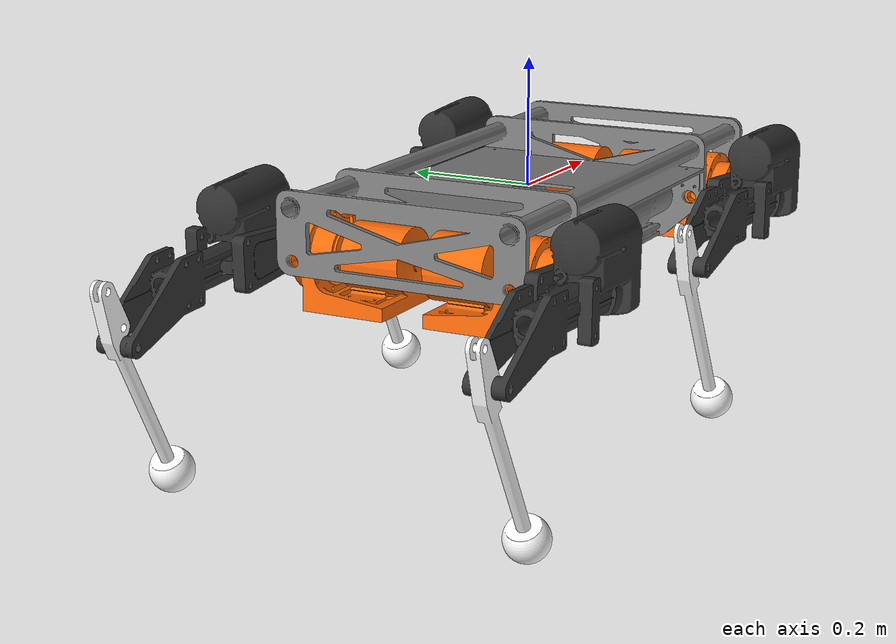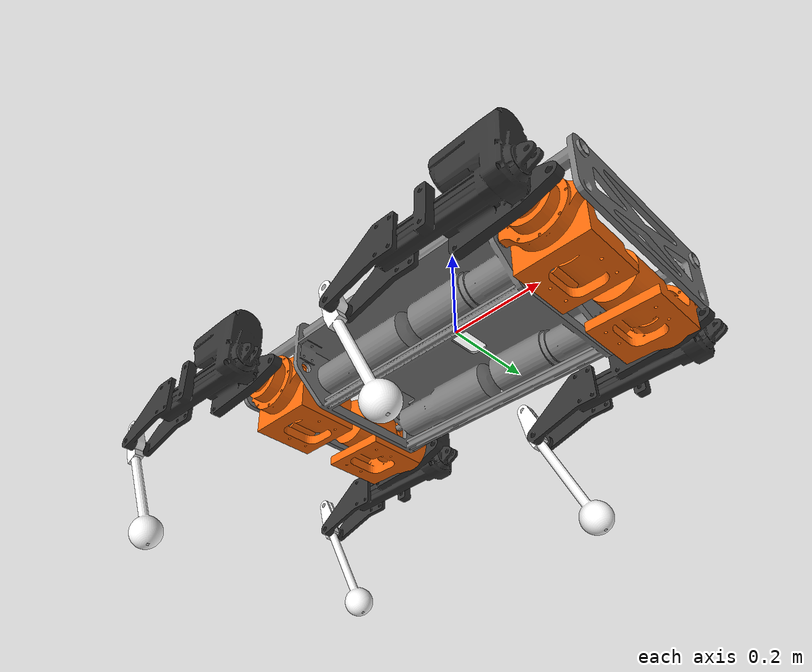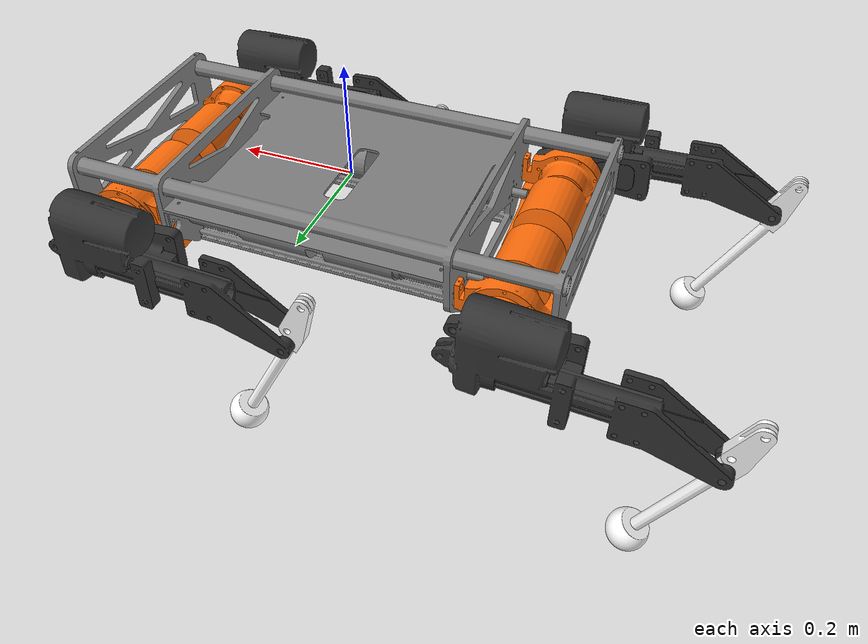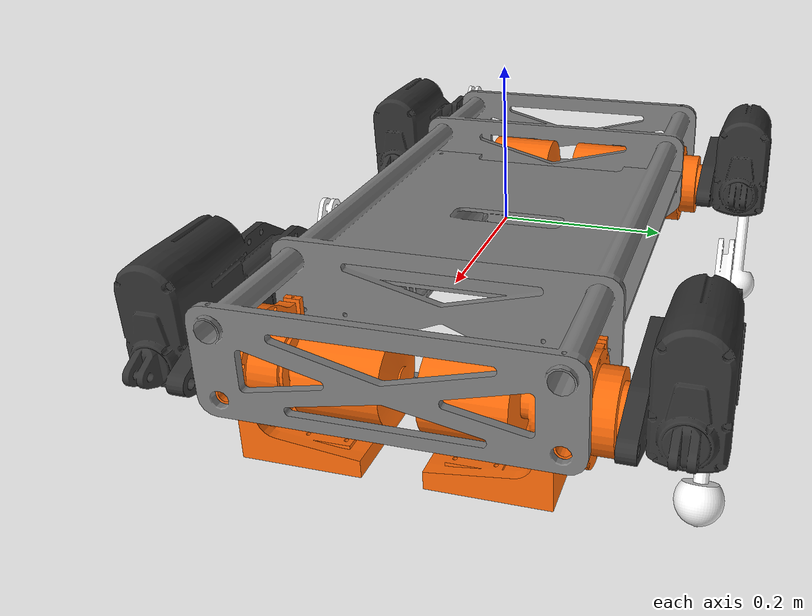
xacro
<?xml version="1.0" encoding="utf-8"?>
<robot name="popi" xmlns:xacro="http://www.ros.org/wiki/xacro">

<!-- Import Rviz colors -->
 	<xacro:include filename="$(find popi_description)/xacro/physicprop.xacro" />

<!--*************************************** CORPS ****************************************-->

	<link name="Base_flottante">
        <visual>
            <origin rpy="0 0 0" xyz="0 0 0"/>
            <geometry>
                <box size="0.001 0.001 0.001"/>
            </geometry>
        </visual>
    </link>

    <joint name="base_flottante" type="fixed">
        <origin rpy="0 0 0" xyz="0 0 0"/>
        <parent link="Base_flottante"/>
        <child link="Bati"/>
    </joint>

  	<link name="Bati">
	    <inertial>
		    <origin xyz="0 0 -0.03523"
		        	rpy="0 0 0" />
		    <mass value="${masse_bati}" />
		    <inertia 	ixx="0.38573"  ixy="0"   		ixz="0"
										iyy="0.90692" 	iyz="0"
		        										izz="1.2277" />
	    </inertial>
	    <visual>
		    <origin xyz="0 0 0"
		        	rpy="0 0 0" />
		    <geometry>
		    	<mesh filename="package://popi_description/meshes/Bati.STL" />
		    </geometry>
		    <material name="grey"/>
	    </visual>
	    <collision>
	      	<origin xyz="0 0 0"
	        	  	rpy="0 0 0" />
	      	<geometry>
	        	<mesh filename="package://popi_description/meshes/Bati.STL" />
	      	</geometry>
	    </collision>
  	</link>

<!--********************************* JAMBE AVANT-DROITE *********************************-->

  	<link name="EpauleAVD">
	    <inertial>
	      	<origin xyz="-0.00137 0.04355 -0.00354"
	        		rpy="0 0 0" />
	     	<mass value="${masse_epaule}" />
	      	<inertia  	ixx="0.0286" 	ixy="6E-05" 	ixz="-0.00018"
	        							iyy="0.01067" 	iyz="-0.00075"
	        											izz="0.02893" />
	    </inertial>
    	<visual>
      		<origin xyz="0 0 0"
        			rpy="0 0 0" />
	      	<geometry>
	        	<mesh filename="package://popi_description/meshes/EpauleAVD.STL" />
	      	</geometry>
	      	<material name="orange"/>
    	</visual>
    	<collision>
      		<origin xyz="0 0 0"
        			rpy="0 0 0" />
      		<geometry>
        		<mesh filename="package://popi_description/meshes/EpauleAVD.STL" />
      		</geometry>
    	</collision>
  	</link>

  	<link name="HJambeAVD">
    	<inertial>
     		<origin xyz="-0.11331 0.00512 0.01743"
        			rpy="0 0 0" />
      		<mass value="${masse_hjambe}" />
      		<inertia 	ixx="0.00899" 	ixy="0.00215" 	ixz="0.00647"
        								iyy="0.0605"    iyz="-0.00043"
        												izz="0.05703" />
    	</inertial>
    	<visual>
      		<origin xyz="0 0 0"
        			rpy="0 0 0" />
      		<geometry>
        		<mesh filename="package://popi_description/meshes/HJambeAVD.STL" />
      		</geometry>
      		<material name="darkgrey"/>
    	</visual>
    	<collision>
      		<origin xyz="0 0 0"
        			rpy="0 0 0" />
      		<geometry>
        		<mesh filename="package://popi_description/meshes/HJambeAVD.STL" />
      		</geometry>
    	</collision>
  	</link>

  	<link name="BJambeAVD">
    	<inertial>
      		<origin xyz="0.11761 0 -0.012387"
        			rpy="0 0 0" />
      		<mass value="${masse_bjambe}" />
      		<inertia 	ixx="0.000103" 	ixy="0.000000" 	ixz="-0.00019"
      									iyy="0.006798" 	iyz="0"
        												izz="0.006776" />
    	</inertial>
    	<visual>
      		<origin xyz="0 0 0"
        			rpy="0 0 0" />
      		<geometry>
        		<mesh filename="package://popi_description/meshes/BJambeAVD.STL" />
      		</geometry>
      		<material name="white"/>
    	</visual>
    	<collision>
      		<origin xyz="0 0 0"
        			rpy="0 0 0" />
      		<geometry>
        		<mesh filename="package://popi_description/meshes/BJambeAVD.STL" />
      		</geometry>
    	</collision>
  	</link>

  	<link name="PiedAVD">
    	<inertial>
      		<origin xyz="0.0005 1.1348E-09 -1.2018E-09"
        			rpy="0 0 0" />
      		<mass value="${masse_pied}" />
      		<inertia 	ixx="1.0417E-10"	ixy="3.2086E-25"	ixz="2.1003E-26"
        									iyy="5.4167E-11"	iyz="6.3205E-25"
        														izz="5.4167E-11" />
    	</inertial>
    	<visual>
      		<origin xyz="0 0 0"
        	    	rpy="0 0 0" />
      		<geometry>
        		<mesh filename="package://popi_description/meshes/PiedAVD.STL" />
      		</geometry>
      		<material name="white"/>
    	</visual>
    	<collision>
      		<origin xyz="0 0 0"
        	  		rpy="0 0 0" />
      		<geometry>
        		<mesh filename="package://popi_description/meshes/PiedAVD.STL" />
      		</geometry>
    	</collision>
  	</link>

<!--********************************* JAMBE AVANT-GAUCHE *********************************-->

    <link name="EpauleAVG">
    	<inertial>
      		<origin xyz="-0.00137 -0.04355 -0.00354"
        			rpy="0 0 0" />
      		<mass value="${masse_epaule}" />
      		<inertia 	ixx="0.02864" 	ixy="-6E-05"	ixz="-0.00018"
        								iyy="0.01067"	iyz="0.00075"
        												izz="0.02893" />
    	</inertial>
    	<visual>
      		<origin xyz="0 0 0"
        			rpy="0 0 0" />
     		 <geometry>
       			<mesh filename="package://popi_description/meshes/EpauleAVG.STL" />
      		</geometry>
      		<material name="orange"/>
    	</visual>
    	<collision>
      		<origin xyz="0 0 0"
        			rpy="0 0 0" />
      		<geometry>
        		<mesh filename="package://popi_description/meshes/EpauleAVG.STL" />
      		</geometry>
    	</collision>
  	</link>

	<link name="HJambeAVG">
	    <inertial>
	      	<origin xyz="-0.11389 -0.00555 0.00901"
	        		rpy="0 0 0" />
	      	<mass value="${masse_hjambe}" />
	      	<inertia 	ixx="0.01032" 	ixy="-0.00226" 	ixz="0.01011"
	        							iyy="0.06056" 	iyz="0.00025"
	        											izz="0.05596" />
	    </inertial>
	    <visual>
	     	<origin xyz="0 0 0"
	        		rpy="0 0 0" />
	      	<geometry>
	        	<mesh filename="package://popi_description/meshes/HJambeAVG.STL" />
	      	</geometry>
	      	<material name="darkgrey"/>
	    </visual>
	    <collision>
	      	<origin xyz="0 0 0"
	        		rpy="0 0 0" />
	      		<geometry>
	        		<mesh filename="package://popi_description/meshes/HJambeAVG.STL" />
	      		</geometry>
	    </collision>
	</link>

	<link name="BJambeAVG">
	    <inertial>
	      	<origin xyz="0.11761 0 -0.012387"
	        		rpy="0 0 0" />
	      	<mass value="${masse_bjambe}" />
	      	<inertia 	ixx="0.000103" 	ixy="0.000000" 	ixz="-0.00019"
      									iyy="0.006798" 	iyz="0"
        												izz="0.006776" />
	    </inertial>
	    <visual>
	      	<origin xyz="0 0 0"
        		  	rpy="0 0 0" />
	      	<geometry>
	        	<mesh filename="package://popi_description/meshes/BJambeAVG.STL" />
	      	</geometry>
	      	<material name="white"/>
	    </visual>
	    <collision>
	      	<origin xyz="0 0 0"
        		  	rpy="0 0 0" />
	      	<geometry>
	        	<mesh filename="package://popi_description/meshes/BJambeAVG.STL" />
	      	</geometry>
	    </collision>
	</link>

	<link name="PiedAVG">
    	<inertial>
      		<origin xyz="0.0005 -3.5068E-06 -4.4931E-09"
        	  		rpy="0 0 0" />
      		<mass value="${masse_pied}" />
      		<inertia 		ixx="1.0417E-10" 	ixy="4.4849E-25" 	ixz="1.454E-25"
        										iyy="5.4167E-11" 	iyz="6.3205E-25"
        															izz="5.4167E-11" />
    	</inertial>
	    <visual>
	    	<origin xyz="0 0 0"
	        	  	rpy="0 0 0" />
	    	<geometry>
	        	<mesh filename="package://popi_description/meshes/PiedAVG.STL" />
	      	</geometry>
	      	<material name="white"/>
	    </visual>
	    <collision>
	      	<origin xyz="0 0 0"
	        	  	rpy="0 0 0" />
	      	<geometry>
	        	<mesh filename="package://popi_description/meshes/PiedAVG.STL" />
	      	</geometry>
    	</collision>
  	</link>

<!--******************************** JAMBE ARRIERE-DROITE ********************************-->
	<link name="EpauleARD">
	    <inertial>
	      	<origin xyz="0.00137 0.04355 -0.00354"
	        		rpy="0 0 0" />
	      	<mass value="${masse_epaule}" />
	     	<inertia 	ixx="0.02864" 	ixy="-6E-05" 	ixz="1.8E-05"
	        							iyy="0.01067"	iyz="-0.00075"
	        											izz="0.02893" />
	    </inertial>
	    <visual>
	      	<origin xyz="0 0 0"
	        		rpy="0 0 0" />
	        <geometry>
	        	<mesh filename="package://popi_description/meshes/EpauleARD.STL" />
	      	</geometry>
	      	<material name="orange"/>
	    </visual>
	    <collision>
	      	<origin xyz="0 0 0"
	        		rpy="0 0 0" />
	        <geometry>
	        	<mesh filename="package://popi_description/meshes/EpauleARD.STL" />
	      	</geometry>
	    </collision>
	</link>

	<link name="HJambeARD">
	    <inertial>
	     	<origin xyz="-0.11331 0.00512 0.01743"
	        		rpy="0 0 0" />
	      	<mass value="${masse_hjambe}" />
	      	<inertia 	ixx="0.00899" 	ixy="0.00215" 	ixz="0.00647"
	        							iyy="0.0605"  	iyz="-0.00043"
	        											izz="0.05703" />
	    </inertial>
	    <visual>
	      	<origin xyz="0 0 0"
	        		rpy="0 0 0" />
	      	<geometry>
	        	<mesh filename="package://popi_description/meshes/HJambeARD.STL" />
	      	</geometry>
	      	<material name="darkgrey"/>
	    </visual>
	    <collision>
	      	<origin xyz="0 0 0"
	        		rpy="0 0 0" />
	      	<geometry>
	        	<mesh filename="package://popi_description/meshes/HJambeARD.STL" />
	      	</geometry>
	    </collision>
	</link>

  	<link name="BJambeARD">
	    <inertial>
	      	<origin xyz="0.11761 0 -0.012387"
	        		rpy="0 0 0" />
	      	<mass value="${masse_bjambe}" />
	      	<inertia 	ixx="0.000103" 	ixy="0.000000" 	ixz="-0.00019"
      									iyy="0.006798" 	iyz="0"
        												izz="0.006776" />
	    </inertial>
	    <visual>
	      	<origin xyz="0 0 0"
	        		rpy="0 0 0" />
	      	<geometry>
	        	<mesh filename="package://popi_description/meshes/BJambeARD.STL" />
	      	</geometry>
	      	<material name="white"/>
	    </visual>
	    <collision>
	      	<origin xyz="0 0 0"
	        		rpy="0 0 0" />
	      	<geometry>
	        	<mesh filename="package://popi_description/meshes/BJambeARD.STL" />
	      	</geometry>
	    </collision>
  	</link>

	<link name="PiedARD">
	    <inertial>
	      	<origin xyz="0.0005 -3.0378E-12 -8.2379E-14"
	        		rpy="0 0 0" />
	      	<mass value="${masse_pied}" />
	    	<inertia ixx="1.0417E-10"	ixy="-3.7731E-26"	ixz="-1.6964E-25"
	        							iyy="5.4167E-11" 	iyz="1.0234E-25"
	        												izz="5.4167E-11" />
	    </inertial>
	    <visual>
	    	<origin xyz="0 0 0"
	        		rpy="0 0 0" />
	      	<geometry>
	        	<mesh filename="package://popi_description/meshes/PiedARD.STL" />
	      	</geometry>
	      	<material name="white"/>
	    </visual>
	    <collision>
	      	<origin xyz="0 0 0"
	        		rpy="0 0 0" />
	      	<geometry>
	        	<mesh filename="package://popi_description/meshes/PiedARD.STL" />
	      	</geometry>
	    </collision>
	</link>

<!--******************************** JAMBE ARRIERE-GAUCHE ********************************-->

  	<link name="EpauleARG">
	    <inertial>
	      	<origin xyz="0.00137 -0.04355 -0.00354"
	        		rpy="0 0 0" />
	      	<mass value="${masse_epaule}" />
	      	<inertia 	ixx="0.02864" 	ixy="6E-05" 	ixz="0.00018"
	        							iyy="0.01067" 	iyz="0.00075"
	        											izz="0.02893" />
	    </inertial>
    	<visual>
      		<origin xyz="0 0 0"
        			rpy="0 0 0" />
      		<geometry>
        		<mesh filename="package://popi_description/meshes/EpauleARG.STL" />
      		</geometry>
      		<material name="orange"/>
    	</visual>
    	<collision>
      		<origin xyz="0 0 0"
        			rpy="0 0 0" />
      		<geometry>
        		<mesh filename="package://popi_description/meshes/EpauleARG.STL" />
      		</geometry>
    	</collision>
  	</link>

	<link name="HJambeARG">
	    <inertial>
	      	<origin xyz="-0.11389 -0.00555 0.00901"
	        		rpy="0 0 0" />
	      	<mass value="${masse_hjambe}" />
	      	<inertia 	ixx="0.01032" 	ixy="-0.00226"	ixz="0.01011"
	        							iyy="0.06056"  	iyz="0.00025"
	        											izz="0.05596" />
	    </inertial>
	    <visual>
	      	<origin xyz="0 0 0"
	        		rpy="0 0 0" />
	     	<geometry>
	        	<mesh filename="package://popi_description/meshes/HJambeARG.STL" />
	      	</geometry>
	      	<material name="darkgrey"/>
	    </visual>
	    <collision>
	      	<origin xyz="0 0 0"
	        		rpy="0 0 0" />
	     	<geometry>
	        	<mesh filename="package://popi_description/meshes/HJambeARG.STL" />
	      	</geometry>
	    </collision>
	</link>

	<link name="BJambeARG">
	    <inertial>
	      	<origin xyz="0.11761 0.0 -0.012387"
	        		rpy="0 0 0" />
	      	<mass value="${masse_bjambe}" />
	      	<inertia ixx="0.000103" 	ixy="0.000000" 	ixz="-0.00019"
      									iyy="0.006798" 	iyz="0"
        												izz="0.006776" />
	    </inertial>
	    <visual>
	      	<origin xyz="0 0 0"
	        		rpy="0 0 0" />
	      	<geometry>
	        	<mesh filename="package://popi_description/meshes/BJambeARG.STL" />
	      	</geometry>
	      	<material name="white"/>
	    </visual>
	    <collision>
	      	<origin xyz="0 0 0"
	        		rpy="0 0 0" />
	      	<geometry>
	        	<mesh filename="package://popi_description/meshes/BJambeARG.STL" />
	      	</geometry>
	    </collision>
	</link>

	<link name="PiedARG">
	    <inertial>
	      	<origin xyz="0.0005 -3.5073E-06 5.5511E-14"
	        		rpy="0 0 0" />
	      	<mass value="${masse_pied}" />
	      	<inertia ixx="1.0417E-10" 	ixy="6.1999E-25" 	ixz="-9.8551E-26"
	        							iyy="5.4167E-11" 	iyz="-1.1985E-25"
	        												izz="5.4167E-11" />
	    </inertial>
	    <visual>
	      	<origin xyz="0 0 0"
	        		rpy="0 0 0" />
	      	<geometry>
	        	<mesh filename="package://popi_description/meshes/PiedARG.STL" />
	      	</geometry>
	      	<material name="white"/>
	    </visual>
	    <collision>
	      	<origin xyz="0 0 0"
	        		rpy="0 0 0" />
	      	<geometry>
	        	<mesh filename="package://popi_description/meshes/PiedARG.STL" />
	      	</geometry>
	    </collision>
	</link>

<!--********************************* JOINTS AVANT-DROITS ********************************-->

  	<joint name="aileAVD" type="revolute">
    	<origin xyz="0.3305 -0.175 -0.051"
      			rpy="0 0 0" />
    	<parent link="Bati" />
    	<child  link="EpauleAVD" />
    	<axis   xyz="-1 0 0" />
    	<limit  lower="${lower_aile}"
      			upper="${upper_aile}"
      			effort="${effort_aile}"
      			velocity="${vel_aile}" />
  		<dynamics damping="${damping_aile}"
  				  friction="${friction_aile}"/>
	</joint>

	<joint name="epauleAVD" type="revolute">
	    <origin xyz="0 -0.1077 0"
	      		rpy="0 0 0" />
	    <parent link="EpauleAVD" />
	    <child  link="HJambeAVD" />
	    <axis   xyz="0 -1 0" />
	    <limit  lower="${lower_epaule}"
      			upper="${upper_epaule}"
      			effort="${effort_epaule}"
      			velocity="${vel_epaule}" />
	    <dynamics damping="${damping_epaule}"
  				  friction="${friction_epaule}"/>
  	</joint>

  	<joint name="coudeAVD" type="revolute">
	    <origin xyz="-0.35192 0 -0.041509"
	      		rpy="0 0 0" />
	    <parent link="HJambeAVD" />
	    <child  link="BJambeAVD" />
	    <axis   xyz="0 1 0" />
	    <limit  lower="${lower_coude}"
      			upper="${upper_coude}"
      			effort="${effort_coude}"
      			velocity="${vel_coude}" />
	    <dynamics damping="${damping_coude}"
  				  friction="${friction_coude}"/>
  	</joint>

  	<joint name="piedAVD" type="fixed">
	    <origin xyz="0.29604 0 -0.015"
	      		rpy="0 0 0" />
	    <parent link="BJambeAVD" />
	    <child 	link="PiedAVD" />
	    <axis 	xyz="0 0 0" />
  	</joint>

<!--******************************** JOINTS AVANT-GAUCHES ********************************-->

	<joint name="aileAVG" type="revolute">
	    <origin xyz="0.3305 0.175 -0.051"
	      		rpy="0 0 0" />
	    <parent link="Bati" />
	    <child  link="EpauleAVG" />
	    <axis   xyz="1 0 0" />
	    <limit  lower="${lower_aile}"
      			upper="${upper_aile}"
      			effort="${effort_aile}"
      			velocity="${vel_aile}" />
	    <dynamics damping="${damping_aile}"
  				  friction="${friction_aile}"/>
	</joint>

	<joint name="epauleAVG" type="revolute">
	    <origin xyz="0 0.1077 0"
	      		rpy="0 0 0" />
	    <parent link="EpauleAVG" />
	    <child  link="HJambeAVG" />
	    <axis   xyz="0 -1 0" />
	    <limit  lower="${lower_epaule}"
      			upper="${upper_epaule}"
      			effort="${effort_epaule}"
      			velocity="${vel_epaule}" />
	    <dynamics damping="${damping_epaule}"
  				  friction="${friction_epaule}"/>
  	</joint>

  	<joint name="coudeAVG" type="revolute">
	    <origin xyz="-0.35192 0 -0.041509"
	      		rpy="0 0 0" />
	    <parent link="HJambeAVG" />
	    <child  link="BJambeAVG" />
	    <axis   xyz="0 1 0" />
	    <limit  lower="${lower_coude}"
      			upper="${upper_coude}"
      			effort="${effort_coude}"
      			velocity="${vel_coude}" />
	    <dynamics damping="${damping_coude}"
  				  friction="${friction_coude}"/>
  	</joint>

  	<joint name="piedAVG" type="fixed">
    	<origin xyz="0.29604 0 -0.015"
      			rpy="0 0 0" />
	    <parent link="BJambeAVG" />
	    <child 	link="PiedAVG" />
	    <axis 	xyz="0 0 0" />
  	</joint>

<!--******************************* JOINTS ARRIERE-DROITS ********************************-->

	<joint  name="aileARD"  type="revolute">
	    <origin xyz="-0.3305 -0.175 -0.051"
	      		rpy="0 0 0" />
	    <parent link="Bati" />
	    <child  link="EpauleARD" />
	    <axis   xyz="-1 0 0" />
	    <limit  lower="${lower_aile}"
      			upper="${upper_aile}"
      			effort="${effort_aile}"
      			velocity="${vel_aile}" />
	    <dynamics damping="${damping_aile}"
  				  friction="${friction_aile}"/>
	</joint>
	<joint name="epauleARD" type="revolute">
	    <origin xyz="0 -0.1077 0"
	      		rpy="0 0 0" />
	    <parent link="EpauleARD" />
	    <child  link="HJambeARD" />
	    <axis   xyz="0 -1 0" />
	    <limit  lower="${lower_epaule}"
      			upper="${upper_epaule}"
      			effort="${effort_epaule}"
      			velocity="${vel_epaule}" />
	    <dynamics damping="${damping_epaule}"
  				  friction="${friction_epaule}"/>
	</joint>
	<joint name="coudeARD" type="revolute">
	    <origin xyz="-0.35192 0 -0.041509"
	      		rpy="0 0 0" />
	    <parent link="HJambeARD" />
	    <child  link="BJambeARD" />
	    <axis   xyz="0 1 0" />
	    <limit  lower="${lower_coude}"
      			upper="${upper_coude}"
      			effort="${effort_coude}"
      			velocity="${vel_coude}" />
	    <dynamics damping="${damping_coude}"
  				  friction="${friction_coude}"/>
	</joint>

	<joint name="piedARD" type="fixed">
	    <origin xyz="0.29604 0 -0.015"
	      		rpy="0 0 0" />
	    <parent link="BJambeARD" />
	    <child 	link="PiedARD" />
	    <axis 	xyz="0 0 0" />
  	</joint>

<!--****************************** JOINTS ARRIERE-GAUCHES ********************************-->

	<joint name="aileARG" type="revolute">
    	<origin xyz="-0.3305 0.175 -0.051"
      			rpy="0 0 0" />
    	<parent link="Bati" />
	    <child  link="EpauleARG" />
	    <axis   xyz="1 0 0" />
	    <limit  lower="${lower_aile}"
      			upper="${upper_aile}"
      			effort="${effort_aile}"
      			velocity="${vel_aile}" />
	    <dynamics damping="${damping_aile}"
  				  friction="${friction_aile}"/>
  	</joint>
  	<joint name="epauleARG" type="revolute">
	    <origin xyz="0 0.1077 0"
	      		rpy="0 0 0" />
	    <parent link="EpauleARG" />
	    <child  link="HJambeARG" />
	    <axis   xyz="0 -1 0" />
	    <limit  lower="${lower_epaule}"
      			upper="${upper_epaule}"
      			effort="${effort_epaule}"
      			velocity="${vel_epaule}" />
	    <dynamics damping="${damping_epaule}"
  				  friction="${friction_epaule}"/>
  	</joint>
	<joint name="coudeARG" type="revolute">
		<origin xyz="-0.35192 0 -0.041509"
		  		rpy="0 0 0" />
		<parent link="HJambeARG" />
		<child  link="BJambeARG" />
		<axis   xyz="0 1 0" />
		<limit  lower="${lower_coude}"
      			upper="${upper_coude}"
      			effort="${effort_coude}"
      			velocity="${vel_coude}" />
		<dynamics damping="${damping_coude}"
  				  friction="${friction_coude}"/>
	</joint>

	<joint name="piedARG" type="fixed">
	    <origin xyz="0.29604 0 -0.015"
	      		rpy="0 0 0" />
	    <parent link="BJambeARG" />
	    <child 	link="PiedARG" />
	    <axis 	xyz="0 0 0" />
	</joint>

<!--********************************** PLUGINS GAZEBO ************************************-->
  	<gazebo>
    	<plugin name="gazebo_ros_control" filename="libgazebo_ros_control.so">
      		<robotNamespace>/popi</robotNamespace>
      		<robotSimType>gazebo_ros_control/DefaultRobotHWSim</robotSimType>
    	</plugin>
  	</gazebo>

<!--***************************** TRANSMISSIONS AVANT-DROITES ****************************-->

  	<transmission name="aileAVD_tran">
    	<type>transmission_interface/SimpleTransmission</type>
    	<joint name="aileAVD">
      		<hardwareInterface>hardware_interface/EffortJointInterface</hardwareInterface>
    	</joint>
    	<actuator name="aileAVD_moteur">
      		<mechanicalReduction>1</mechanicalReduction>
    	</actuator>
  	</transmission>

  	<transmission name="epauleAVD_tran">
    	<type>transmission_interface/SimpleTransmission</type>
    	<joint name="epauleAVD">
      		<hardwareInterface>hardware_interface/EffortJointInterface</hardwareInterface>
    	</joint>
    	<actuator name="epauleAVD_moteur">
      		<mechanicalReduction>1</mechanicalReduction>
    	</actuator>
  	</transmission>

  	<transmission name="coudeAVD_tran">
    	<type>transmission_interface/SimpleTransmission</type>
    	<joint name="coudeAVD">
      		<hardwareInterface>hardware_interface/EffortJointInterface</hardwareInterface>
    	</joint>
    	<actuator name="coudeAVD_moteur">
      		<mechanicalReduction>1</mechanicalReduction>
    	</actuator>
  	</transmission>

<!--***************************** TRANSMISSIONS AVANT-GAUCHES ****************************-->

    <transmission name="aileAVG_tran">
    	<type>transmission_interface/SimpleTransmission</type>
    	<joint name="aileAVG">
      		<hardwareInterface>hardware_interface/EffortJointInterface</hardwareInterface>
    	</joint>
    	<actuator name="aileAVG_moteur">
      		<mechanicalReduction>1</mechanicalReduction>
    	</actuator>
  	</transmission>

  	<transmission name="epauleAVG_tran">
    	<type>transmission_interface/SimpleTransmission</type>
    	<joint name="epauleAVG">
      		<hardwareInterface>hardware_interface/EffortJointInterface</hardwareInterface>
    	</joint>
    	<actuator name="epauleAVG_moteur">
      		<mechanicalReduction>1</mechanicalReduction>
    	</actuator>
  	</transmission>

  	<transmission name="coudeAVG_tran">
    	<type>transmission_interface/SimpleTransmission</type>
    	<joint name="coudeAVG">
      		<hardwareInterface>hardware_interface/EffortJointInterface</hardwareInterface>
    	</joint>
    	<actuator name="coudeAVG_moteur">
      		<mechanicalReduction>1</mechanicalReduction>
    	</actuator>
  	</transmission>

<!--**************************** TRANSMISSIONS ARRIERE-DROITES ***************************-->

    <transmission name="aileARD_tran">
    	<type>transmission_interface/SimpleTransmission</type>
    	<joint name="aileARD">
      		<hardwareInterface>hardware_interface/EffortJointInterface</hardwareInterface>
    	</joint>
    	<actuator name="aileARD_moteur">
      		<mechanicalReduction>1</mechanicalReduction>
    	</actuator>
  	</transmission>

  	<transmission name="epauleARD_tran">
    	<type>transmission_interface/SimpleTransmission</type>
    	<joint name="epauleARD">
      		<hardwareInterface>hardware_interface/EffortJointInterface</hardwareInterface>
    	</joint>
    	<actuator name="epauleARD_moteur">
      		<mechanicalReduction>1</mechanicalReduction>
    	</actuator>
  	</transmission>

  	<transmission name="coudeARD_tran">
    	<type>transmission_interface/SimpleTransmission</type>
    	<joint name="coudeARD">
      		<hardwareInterface>hardware_interface/EffortJointInterface</hardwareInterface>
    	</joint>
    	<actuator name="coudeARD_moteur">
      		<mechanicalReduction>1</mechanicalReduction>
    	</actuator>
  	</transmission>

<!--**************************** TRANSMISSIONS ARRIERE-GAUCHES ***************************-->

    <transmission name="aileARG_tran">
    	<type>transmission_interface/SimpleTransmission</type>
    	<joint name="aileARG">
      		<hardwareInterface>hardware_interface/EffortJointInterface</hardwareInterface>
    	</joint>
    	<actuator name="aileARG_moteur">
      		<mechanicalReduction>1</mechanicalReduction>
    	</actuator>
  	</transmission>

  	<transmission name="epauleARG_tran">
    	<type>transmission_interface/SimpleTransmission</type>
    	<joint name="epauleARG">
      		<hardwareInterface>hardware_interface/EffortJointInterface</hardwareInterface>
    	</joint>
    	<actuator name="epauleARG_moteur">
      		<mechanicalReduction>1</mechanicalReduction>
    	</actuator>
  	</transmission>

  	<transmission name="coudeARG_tran">
    	<type>transmission_interface/SimpleTransmission</type>
    	<joint name="coudeARG">
      		<hardwareInterface>hardware_interface/EffortJointInterface</hardwareInterface>
    	</joint>
    	<actuator name="coudeARG_moteur">
      		<mechanicalReduction>1</mechanicalReduction>
    	</actuator>
  	</transmission>

</robot>

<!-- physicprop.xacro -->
<robot name="popi" xmlns:xacro="http://www.ros.org/wiki/xacro">

  <xacro:include filename="$(find popi_description)/xacro/const.xacro" />

  <material name="black">
    <color rgba="0.0 0.0 0.0 1.0"/>
  </material>

  <material name="blue">
    <color rgba="0.0 0.0 0.8 1.0"/>
  </material>

  <material name="green">
    <color rgba="0.0 0.8 0.0 1.0"/>
  </material>

  <material name="grey">
    <color rgba="0.5 0.5 0.5 1.0"/>
  </material>

  <material name="darkgrey">
    <color rgba="0.2 0.2 0.2 1.0"/>
  </material>

  <material name="orange">
    <color rgba="${255/255} ${108/255} ${10/255} 1.0"/>
  </material>

  <material name="brown">
    <color rgba="${222/255} ${207/255} ${195/255} 1.0"/>
  </material>

  <material name="red">
    <color rgba="0.8 0.0 0.0 1.0"/>
  </material>

  <material name="white">
    <color rgba="1.0 1.0 1.0 1.0"/>
  </material>

  <gazebo reference="Bati">
    <material>Gazebo/Grey</material>
    <fdir1>${fdir_bati}</fdir1>
    <self_collide>${selfcollide_bati}</self_collide>
    <kp>${kp_bati}</kp>
    <kd>${kd_bati}</kd>
    <mu1>${mu1_bati}</mu1>
    <mu2>${mu2_bati}</mu2>
    <maxVel>${maxVel_bati}</maxVel>
    <minDepth>${minDepth_bati}</minDepth>
  </gazebo>

  <gazebo reference="EpauleAVD">
    <material>Gazebo/Orange</material>
    <fdir1>${fdir_epaule}</fdir1>
    <self_collide>${selfcollide_epaule}</self_collide>
    <kp>${kp_epaule}</kp>
    <kd>${kd_epaule}</kd>
    <mu1>${mu1_epaule}</mu1>
    <mu2>${mu2_epaule}</mu2>
    <maxVel>${maxVel_epaule}</maxVel>
    <minDepth>${minDepth_epaule}</minDepth>
  </gazebo>

  <gazebo reference="EpauleAVG">
    <material>Gazebo/Orange</material>
    <fdir1>${fdir_epaule}</fdir1>
    <self_collide>${selfcollide_epaule}</self_collide>
    <kp>${kp_epaule}</kp>
    <kd>${kd_epaule}</kd>
    <mu1>${mu1_epaule}</mu1>
    <mu2>${mu2_epaule}</mu2>
    <maxVel>${maxVel_epaule}</maxVel>
    <minDepth>${minDepth_epaule}</minDepth>
  </gazebo>

  <gazebo reference="EpauleARD">
    <material>Gazebo/Orange</material>
    <fdir1>${fdir_epaule}</fdir1>
    <self_collide>${selfcollide_epaule}</self_collide>
    <kp>${kp_epaule}</kp>
    <kd>${kd_epaule}</kd>
    <mu1>${mu1_epaule}</mu1>
    <mu2>${mu2_epaule}</mu2>
    <maxVel>${maxVel_epaule}</maxVel>
    <minDepth>${minDepth_epaule}</minDepth>
  </gazebo>

  <gazebo reference="EpauleARG">
    <material>Gazebo/Orange</material>
    <fdir1>${fdir_epaule}</fdir1>
    <self_collide>${selfcollide_epaule}</self_collide>
    <kp>${kp_epaule}</kp>
    <kd>${kd_epaule}</kd>
    <mu1>${mu1_epaule}</mu1>
    <mu2>${mu2_epaule}</mu2>
    <maxVel>${maxVel_epaule}</maxVel>
    <minDepth>${minDepth_epaule}</minDepth>
  </gazebo>

  <gazebo reference="HJambeAVD">
    <material>Gazebo/DarkGrey</material>
    <fdir1>${fdir_hjambe}</fdir1>
    <self_collide>${selfcollide_hjambe}</self_collide>
    <kp>${kp_hjambe}</kp>
    <kd>${kd_hjambe}</kd>
    <mu1>${mu1_hjambe}</mu1>
    <mu2>${mu2_hjambe}</mu2>
    <maxVel>${maxVel_hjambe}</maxVel>
    <minDepth>${minDepth_hjambe}</minDepth>
  </gazebo>

  <gazebo reference="HJambeAVG">
    <material>Gazebo/DarkGrey</material>
    <fdir1>${fdir_hjambe}</fdir1>
    <self_collide>${selfcollide_hjambe}</self_collide>
    <kp>${kp_hjambe}</kp>
    <kd>${kd_hjambe}</kd>
    <mu1>${mu1_hjambe}</mu1>
    <mu2>${mu2_hjambe}</mu2>
    <maxVel>${maxVel_hjambe}</maxVel>
    <minDepth>${minDepth_hjambe}</minDepth>
  </gazebo>

  <gazebo reference="HJambeARD">
    <material>Gazebo/DarkGrey</material>
    <fdir1>${fdir_hjambe}</fdir1>
    <self_collide>${selfcollide_hjambe}</self_collide>
    <kp>${kp_hjambe}</kp>
    <kd>${kd_hjambe}</kd>
    <mu1>${mu1_hjambe}</mu1>
    <mu2>${mu2_hjambe}</mu2>
    <maxVel>${maxVel_hjambe}</maxVel>
    <minDepth>${minDepth_hjambe}</minDepth>
  </gazebo>

  <gazebo reference="HJambeARG">
    <material>Gazebo/DarkGrey</material>
    <fdir1>${fdir_hjambe}</fdir1>
    <self_collide>${selfcollide_hjambe}</self_collide>
    <kp>${kp_hjambe}</kp>
    <kd>${kd_hjambe}</kd>
    <mu1>${mu1_hjambe}</mu1>
    <mu2>${mu2_hjambe}</mu2>
    <maxVel>${maxVel_hjambe}</maxVel>
    <minDepth>${minDepth_hjambe}</minDepth>
  </gazebo>

  <gazebo reference="BJambeAVD">
    <material>Gazebo/White</material>
    <fdir1>${fdir_bjambe}</fdir1>
    <self_collide>${selfcollide_bjambe}</self_collide>
    <kp>${kp_bjambe}</kp>
    <kd>${kd_bjambe}</kd>
    <mu1>${mu1_bjambe}</mu1>
    <mu2>${mu2_bjambe}</mu2>
    <maxVel>${maxVel_bjambe}</maxVel>
    <minDepth>${minDepth_bjambe}</minDepth>
  </gazebo>

  <gazebo reference="BJambeAVG">
    <material>Gazebo/White</material>
    <fdir1>${fdir_bjambe}</fdir1>
    <self_collide>${selfcollide_bjambe}</self_collide>
    <kp>${kp_bjambe}</kp>
    <kd>${kd_bjambe}</kd>
    <mu1>${mu1_bjambe}</mu1>
    <mu2>${mu2_bjambe}</mu2>
    <maxVel>${maxVel_bjambe}</maxVel>
    <minDepth>${minDepth_bjambe}</minDepth>
  </gazebo>

  <gazebo reference="BJambeARD">
    <material>Gazebo/White</material>
    <fdir1>${fdir_bjambe}</fdir1>
    <self_collide>${selfcollide_bjambe}</self_collide>
    <kp>${kp_bjambe}</kp>
    <kd>${kd_bjambe}</kd>
    <mu1>${mu1_bjambe}</mu1>
    <mu2>${mu2_bjambe}</mu2>
    <maxVel>${maxVel_bjambe}</maxVel>
    <minDepth>${minDepth_bjambe}</minDepth>
  </gazebo>

  <gazebo reference="BJambeARG">
    <material>Gazebo/White</material>
    <fdir1>${fdir_bjambe}</fdir1>
    <self_collide>${selfcollide_bjambe}</self_collide>
    <kp>${kp_bjambe}</kp>
    <kd>${kd_bjambe}</kd>
    <mu1>${mu1_bjambe}</mu1>
    <mu2>${mu2_bjambe}</mu2>
    <maxVel>${maxVel_bjambe}</maxVel>
    <minDepth>${minDepth_bjambe}</minDepth>
  </gazebo>

  <gazebo reference="PiedAVD">
    <material>Gazebo/White</material>
    <fdir1>${fdir_pied}</fdir1>
    <self_collide>${selfcollide_pied}</self_collide>
    <kp>${kp_pied}</kp>
    <kd>${kd_pied}</kd>
    <mu1>${mu1_pied}</mu1>
    <mu2>${mu2_pied}</mu2>
    <maxVel>${maxVel_pied}</maxVel>
    <minDepth>${minDepth_pied}</minDepth>
  </gazebo>

  <gazebo reference="PiedAVG">
    <material>Gazebo/White</material>
    <fdir1>${fdir_pied}</fdir1>
    <self_collide>${selfcollide_pied}</self_collide>
    <kp>${kp_pied}</kp>
    <kd>${kd_pied}</kd>
    <mu1>${mu1_pied}</mu1>
    <mu2>${mu2_pied}</mu2>
    <maxVel>${maxVel_pied}</maxVel>
    <minDepth>${minDepth_pied}</minDepth>
  </gazebo>

  <gazebo reference="PiedARD">
    <material>Gazebo/White</material>
    <fdir1>${fdir_pied}</fdir1>
    <self_collide>${selfcollide_pied}</self_collide>
    <kp>${kp_pied}</kp>
    <kd>${kd_pied}</kd>
    <mu1>${mu1_pied}</mu1>
    <mu2>${mu2_pied}</mu2>
    <maxVel>${maxVel_pied}</maxVel>
    <minDepth>${minDepth_pied}</minDepth>
  </gazebo>

  <gazebo reference="PiedARG">
    <material>Gazebo/White</material>
    <fdir1>${fdir_pied}</fdir1>
    <self_collide>${selfcollide_pied}</self_collide>
    <kp>${kp_pied}</kp>
    <kd>${kd_pied}</kd>
    <mu1>${mu1_pied}</mu1>
    <mu2>${mu2_pied}</mu2>
    <maxVel>${maxVel_pied}</maxVel>
    <minDepth>${minDepth_pied}</minDepth>
  </gazebo>

</robot>

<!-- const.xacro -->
<robot name="popi" xmlns:xacro="http://www.ros.org/wiki/xacro">

    <xacro:property name="PI" value="3.1415926535897931"/>

    <!-- URDF -->

    <!-- damping : physical damping value of the joint [N*s / m] for prismatic joints, [N*m*s / rad] for revolute joints. -->
    <!-- friction : physical static friction value of the joint [N] for prismatic joints,[N/m] for revolute joints. -->
    <!-- lower : an attribute specifying the lower joint limit (radians for revolute joints, meters for prismatic joints). Omit if joint is continuous. -->
    <!-- upper : an attribute specifying the upper joint limit (radians for revolute joints, meters for prismatic joints). Omit if joint is continuous. -->
    <!-- effort : an attribute for enforcing the maximum joint effort (|applied effort| < |effort limit|). (N.m for revolute joints, N for prismatic joints) -->
    <!-- vel : an attribute for enforcing the maximum joint velocity. -->

    <xacro:property name="damping_aile" value="0.1"/> <!-- optional, defaults to 0 ; taken into account in ODE physics engine -->
    <xacro:property name="damping_epaule" value="0.1"/>
    <xacro:property name="damping_coude" value="0.1"/>

    <xacro:property name="friction_aile" value="4.5"/> <!-- optional, defaults to 0 ; taken into account in ODE physics engine -->
    <xacro:property name="friction_epaule" value="7.5"/>
    <xacro:property name="friction_coude" value="5"/>

    <xacro:property name="lower_aile" value="-0.4"/> <!-- optional, defaults to 0 ; taken into account in ODE physics engine -->
    <xacro:property name="upper_aile" value="0.4"/> <!-- optional, defaults to 0 ; taken into account in ODE physics engine -->
    <xacro:property name="effort_aile" value="120"/> <!-- required ; taken into account in ODE physics engine -->
    <xacro:property name="vel_aile" value="${PI}"/> <!-- required ; taken into account in ODE physics engine -->

    <xacro:property name="lower_epaule" value="0"/>
    <xacro:property name="upper_epaule" value="${PI}"/>
    <xacro:property name="effort_epaule" value="122"/>
    <xacro:property name="vel_epaule" value="2.87"/>

    <xacro:property name="lower_coude" value="0.26"/>
    <xacro:property name="upper_coude" value="1.92"/>
    <xacro:property name="effort_coude" value="110"/> <!-- 2000 N * 0.055m (distance point d'application de la force du verin et l'axe de rotation du coude -->
    <xacro:property name="vel_coude" value="0.34"/>

    <xacro:property name="masse_bati" value="22.934"/>
    <xacro:property name="masse_epaule" value="6.775"/>
    <xacro:property name="masse_hjambe" value="4.955"/>
    <xacro:property name="masse_bjambe" value="0.49"/>
    <xacro:property name="masse_pied" value="0.001"/>

    <!-- SDF -->

    <!-- fdir : direction principale, dans le repere de collision du lien concerne, de la pyramide de frottement definie par mu1 et mu2. Si laisse par defaut, resultats imprevisibles. -->
    <!-- selfcollide : si sur 1, le lien peut entrer en collision avec les autres liens du modele ; deux liens connectes par un joint n'entreront pas en collision. -->
    <!-- kp : contact stiffness for rigid body contacts -->
    <!-- kd : damping for rigid body contacts -->
    <!-- NOTE : erp : error reduction parameter, par defaut erp = 0.2 | erp = ( dt * kp ) / ( dt * kp + kd ) -->
    <!-- NOTE : cfm : constraint force mixing parameter, par defaut cfm = 0 | cfm = 1 / ( dt * kp + kd ) -->
    <!-- mu1 : coefficient de friction mu, cone de friction approxime par une pyramide dont mu1 represente la premiere direction -->
    <!-- mu2 : coefficient de friction mu, cone de friction approxime par une pyramide dont mu2 represente la deuxieme direction -->
    <!-- minDepth : minimum allowable depth before contact correction impulse is applied -->

	<xacro:property name="fdir_bati" value="1 0 0"/> <!-- default in ODE physics engine 0 0 0 -->
    <xacro:property name="selfcollide_bati" value="1"/> <!-- default in ODE physics engine 0 -->
    <xacro:property name="kp_bati" value="10e12"/> <!-- default in ODE physics engine 10^12 -->
    <xacro:property name="kd_bati" value="1.0"/> <!-- default in ODE physics engine 1.0 -->
    <xacro:property name="mu1_bati" value="1.0"/> <!-- default in ODE physics engine 1.0 -->
    <xacro:property name="mu2_bati" value="1.0"/>  <!-- default in ODE physics engine 1.0 -->
    <xacro:property name="maxVel_bati" value="0.01"/> <!-- default in ODE physics engine 0.01 -->
    <xacro:property name="minDepth_bati" value="0.0"/> <!-- default in ODE physics engine 0.0 -->

	<xacro:property name="fdir_epaule" value="0 1 0"/>
    <xacro:property name="selfcollide_epaule" value="1"/>
    <xacro:property name="kp_epaule" value="10e12"/>
    <xacro:property name="kd_epaule" value="1.0"/>
    <xacro:property name="mu1_epaule" value="1.0"/>
    <xacro:property name="mu2_epaule" value="1.0"/>
    <xacro:property name="maxVel_epaule" value="0.01"/>
    <xacro:property name="minDepth_epaule" value="0.0"/>

    <xacro:property name="fdir_hjambe" value="1 0 0"/>
    <xacro:property name="selfcollide_hjambe" value="1"/>
    <xacro:property name="kp_hjambe" value="10e12"/>
    <xacro:property name="kd_hjambe" value="1.0"/>
    <xacro:property name="mu1_hjambe" value="1.0"/>
    <xacro:property name="mu2_hjambe" value="1.0"/>
    <xacro:property name="maxVel_hjambe" value="0.01"/>
    <xacro:property name="minDepth_hjambe" value="0.0"/>

    <xacro:property name="fdir_bjambe" value="1 0 0"/>
    <xacro:property name="selfcollide_bjambe" value="1"/>
    <xacro:property name="kp_bjambe" value="10e12"/>
    <xacro:property name="kd_bjambe" value="1.0"/>
    <xacro:property name="mu1_bjambe" value="1.0"/>
    <xacro:property name="mu2_bjambe" value="1.0"/>
    <xacro:property name="maxVel_bjambe" value="0.01"/>
    <xacro:property name="minDepth_bjambe" value="0.02"/>

	<xacro:property name="fdir_pied" value="1 0 0"/>
    <xacro:property name="selfcollide_pied" value="1"/>
    <xacro:property name="kp_pied" value="10e12"/>
    <xacro:property name="kd_pied" value="1"/>
    <xacro:property name="mu1_pied" value="1.0"/>
    <xacro:property name="mu2_pied" value="1.0"/>
    <xacro:property name="maxVel_pied" value="0.01"/>
    <xacro:property name="minDepth_pied" value="0.02"/>

</robot>
